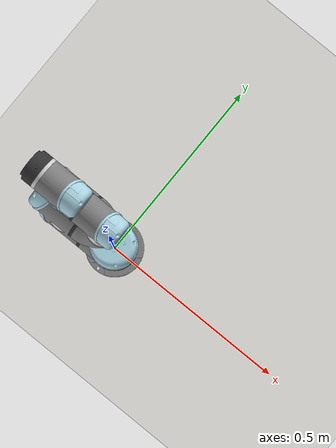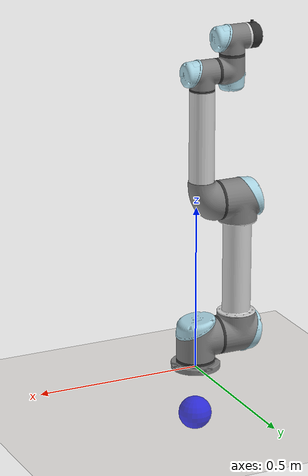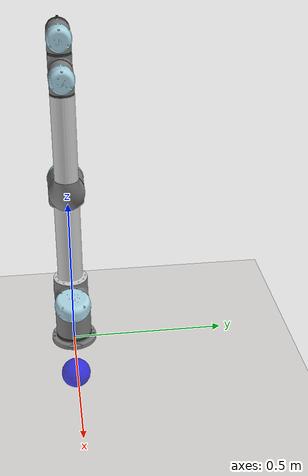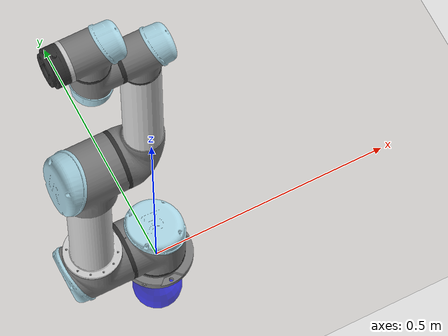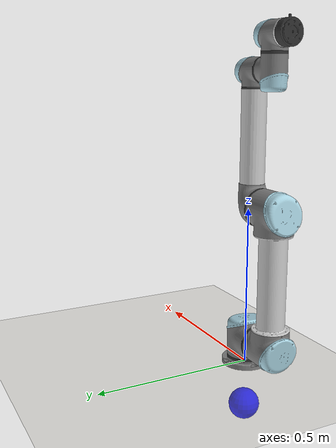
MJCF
<!-- NOTE: the joint limits and references have not been set. If using -->
<!-- this to control a real ur5, make sure they align with the values -->
<!-- used in the real arm firmware -->
<!-- Masses and center-of-masses taken from: www.universal-robots.com/
        how-tos-and-faqs/faq/ur-faq/
        parameters-for-calculations-of-kinematics-and-dynamics-45257/ -->
<!-- Principle moments of inertia not provided, set all to 0.1. -->
<!-- Inertia parameters provided at link below, not sure of accuracy so not used:
        http://hades.mech.northwestern.edu/images/4/49/UR5-URDF.pdf -->
<mujoco model="ur5">
    <compiler angle="radian" meshdir="meshes" balanceinertia="true"/>

    <default>
        <light castshadow="false" diffuse="1 1 1" />
        <camera fovy="60" />
    </default>

    <option integrator= "Euler" timestep="0.001" solver="Newton"/>

    <custom>
        <numeric name="START_ANGLES" data="0 -.67 -.67 0 0 0"/>
        <numeric name="N_GRIPPER_JOINTSs" data="0" />
        <text name="google_id" data="1SjWRUl-D1FZ5fB2cy4jF4X9wTsQ5LWzo"/>
    </custom>

    <asset>
        <!-- arm models -->
        <mesh file="link0.stl"/>
        <mesh file="link1.stl"/>
        <mesh file="link1_cap.stl" />
        <mesh file="link1_connector.stl" />
        <mesh file="link2.stl" />
        <mesh file="link2_tube.stl" />
        <mesh file="link2_cap.stl" />
        <mesh file="link2_connector.stl" />
        <mesh file="link3a.stl" />
        <mesh file="link3a_connector.stl" />
        <mesh file="link3_tube.stl" />
        <mesh file="link3_cap.stl" />
        <mesh file="link3b.stl" />
        <mesh file="link3b_connector.stl" />
        <mesh file="link3b_connector2.stl"/>
        <mesh file="link4.stl" />
        <mesh file="link4_cap.stl" />
        <mesh file="link4_connector.stl" />
        <mesh file="link5.stl" />
        <mesh file="link5_cap.stl" />
        <mesh file="link5_connector.stl" />
        <mesh file="link6.stl" />
        <mesh file="link6_connector.stl" />

        <texture name="floor_tile" file="meshes/floor_tile.png" width="3000" height="3000" type="2d"/>
        <material name="tile" texture="floor_tile" specular="0" shininess="0" reflectance="0" emission="1" />
        <material name="silver" specular="1" shininess="0.5" reflectance="1" emission="0.25" rgba="0.82 0.82 0.82 1"/>
        <material name="grey" specular="1" shininess="0.5" reflectance="1" emission="0.1" rgba="0.5 0.5 0.5 1"/>
        <material name="blue" specular="1" shininess="0.5" reflectance="1" emission="0" rgba="0.678 0.847 0.902 1"/>
        <material name="black" specular="1" shininess="0.5" reflectance="1" emission="0" rgba="0.2 0.2 0.2 1"/>
    </asset>

    <worldbody>
        <geom name="floor_grey_tile" pos="0 0 -0.001" size="0.75 0.75 0.05" type="plane" material="tile"/>

        <body name="hand" pos="0 0 -0.15" mocap="true">
            <geom type="box" size=".002 .004 .006" rgba="0 .9 0 .5" contype="2" conaffinity="2"/>
        </body>

        <body name="target" pos="0 0 -0.15" mocap="true">
            <geom name="target" type="sphere" size="0.05" rgba=".9 0 0 .5" contype="4" conaffinity="4"/>
        </body>

        <body name="target_orientation" pos="0 0 -0.15" mocap="true">
            <geom type="box" size=".02 .04 .06" rgba=".9 0 0 .5" contype="8" conaffinity="8"/>
        </body>

        <body name="path_planner" pos="0 0 -0.15" mocap="true">
            <geom type="sphere" size="0.05" rgba="0 1 1 0.5" contype="16" conaffinity="16"/>
        </body>

        <body name="path_planner_orientation" pos="0 0 -0.15" mocap="true">
            <geom type="box" size=".02 .04 .06" rgba="0 1 1 .5" contype="16" conaffinity="16"/>
        </body>

        <body name="obstacle" pos="0 0 -0.15" mocap="true">
            <geom type="sphere" size="0.05" rgba="0 0 1 1"/>
        </body>

        <light directional="true" pos="-0.5 0.5 3" dir="0 0 -1" />

        <body name="base_link" pos="0 0 0" quat="1 0 0 0">
            <geom name="link0" type="mesh" mesh="link0" pos="0 0 0"/>

            <body name="link1" pos="0 0 0.0213" quat="1 0 0 0">
                <joint name="joint0" axis="0 0 1" pos="0 0 0"/>
                <inertial pos="0 -0.02561 0.00193" mass="3.761" diaginertia="0.1 0.1 0.1"/>
                <geom name="link1_connector" type="mesh" mesh="link1_connector" pos="0 0 0" material="black"
                    conaffinity="32" contype="32"/>
                <geom name="link1" type="mesh" mesh="link1" pos="0 0 0.008" material="grey"/>
                <geom name="link1_cap" type="mesh" mesh="link1_cap" pos="0 0 .1025" material="blue"/>

                <body name="link2" pos="-0.0663 0 0.0679" quat="1 0 0 0">
                    <joint name="joint1" axis="-1 0 0" pos="0 0 0"/>
                    <inertial pos="-0.04706 0 0.2125" mass="8.058" diaginertia="0.1 0.1 0.1"/>
                    <geom name="link2_connector" type="mesh" mesh="link2_connector" pos="0 0 0" material="black"
                        conaffinity="32" contype="32"/>
                    <geom name="link2" type="mesh" mesh="link2" pos="-0.008 0 0" material="grey"/>
                    <geom name="link2_cap" type="mesh" mesh="link2_cap" pos="-0.1015 0 -0.0025" material="blue"/>
                    <geom name="link2_tube" type="mesh" mesh="link2_tube" pos="-0.0679 0 0.066" material="silver"/>

                    <body name="link3" pos="-0.008 0 0.425" quat="1 0 0 0">
                        <joint name="joint2" axis="1 0 0" pos="0 0 0"/>
                        <inertial pos="0.0478 0 0.15" mass="2.846" diaginertia="0.1 0.1 0.1"/>
                        <geom name="link3a_connector" type="mesh" mesh="link3a_connector" pos="0 0 0" material="black"
                            conaffinity="32" contype="32"/>
                        <geom name="link3a" type="mesh" mesh="link3a" pos="0.008 0 0" material="grey"/>
                        <geom name="link3_tube" type="mesh" mesh="link3_tube" pos="0.059 0 0.066" material="silver"/>
                        <geom name="link3b_connector" type="mesh" mesh="link3b_connector" pos="0.059 0 0.3418" material="black" />
                        <geom name="link3b_connector2" type="mesh" mesh="link3b_connector2" pos="0.059 0 0.34" material="grey"
                            conaffinity="32" contype="32"/>
                        <geom name="link3b" type="mesh" mesh="link3b" pos="0.059 0 0.347" material="grey"/>
                        <geom name="link3_cap" type="mesh" mesh="link3_cap" pos="0.0837 0 0.392" material="blue"/>

                        <body name="link4" pos="0.0173 0 0.3922" quat="1 0 0 0">
                            <joint name="joint3" axis="-1 0 0" pos="0 0 0"/>
                            <inertial pos="-0.05796 -0.0018 0" mass="1.37" diaginertia="0.1 0.1 0.1"/>
                            <geom name="link4_connector" type="mesh" mesh="link4_connector" pos="0 0 0" material="black"
                                conaffinity="32" contype="32"/>
                            <geom name="link4" type="mesh" mesh="link4" pos="-0.008 0 0" material="grey"/>
                            <geom name="link4_cap" type="mesh" mesh="link4_cap" pos="-0.05325 0 -0.0247" material="blue"/>

                            <body name="link5" pos="-0.05325 0 0.04165" quat="1 0 0 0">
                                <joint name="joint4" axis="0 0 1" pos="0 0 0"/>
                                <inertial pos="0.0018 0 0.01634" mass="1.3" diaginertia="0.1 0.1 0.1"/>
                                <geom name="link5_connector" type="mesh" mesh="link5_connector" pos="0 0 0" material="black"
                                    conaffinity="32" contype="32"/>
                                <geom name="link5" type="mesh" mesh="link5" pos="0 0 0.0079" material="grey"/>
                                <geom name="link5_cap" type="mesh" mesh="link5_cap" pos="0.025 0 0.053" material="blue"/>

                                <body name="link6" pos="-0.04165 0 0.05305" quat="1 0 0 0">
                                    <joint name="joint5" axis="-1 0 0" pos="0 0 0"/>
                                    <inertial pos="-0.038841 0 0" mass="0.365" diaginertia="0.1 0.1 0.1"/>
                                    <geom name="link6_connector" type="mesh" mesh="link6_connector" pos="0 0 0" material="silver"
                                        conaffinity="32" contype="32"/>
                                    <geom name="link6" type="mesh" mesh="link6" pos="-0.008 0 0" material="black"/>

                                    <body name="EE" pos="-0.04 0 0" quat="1 0 0 0"/>
                                </body>
                            </body>
                        </body>
                    </body>
                </body>
            </body>
        </body>
    </worldbody>

    <actuator>
        <motor name="joint0_motor" joint="joint0"/>
        <motor name="joint1_motor" joint="joint1"/>
        <motor name="joint2_motor" joint="joint2"/>
        <motor name="joint3_motor" joint="joint3"/>
        <motor name="joint4_motor" joint="joint4"/>
        <motor name="joint5_motor" joint="joint5"/>
    </actuator>

</mujoco>
